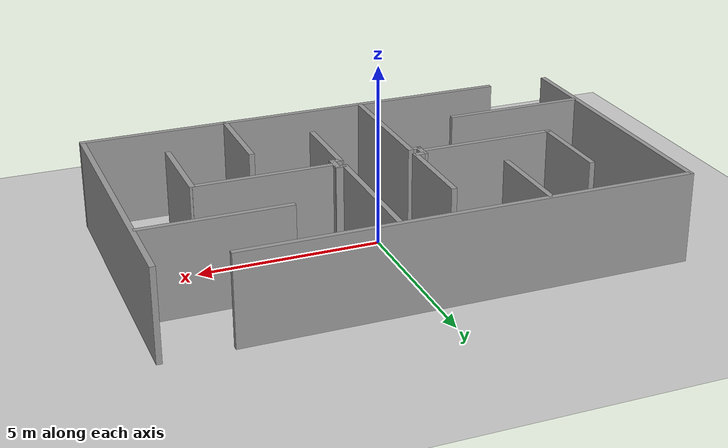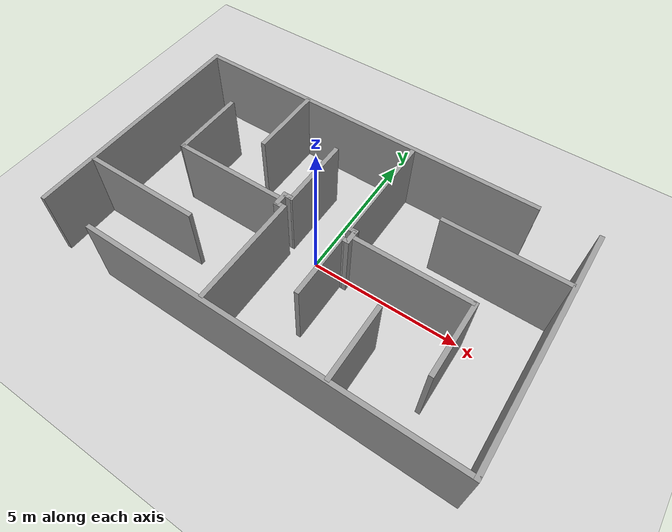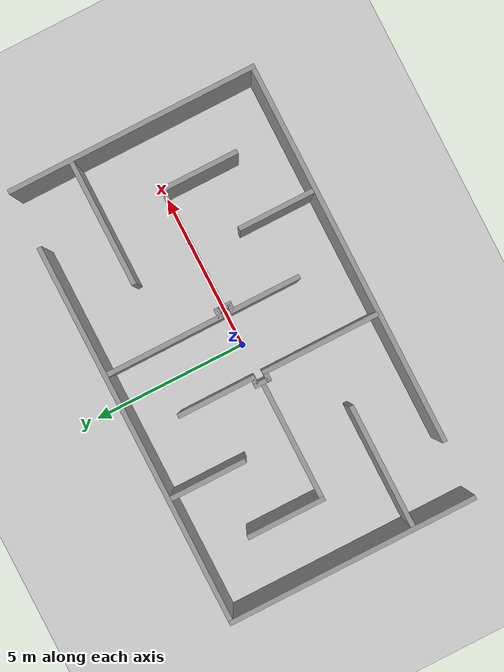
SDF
<sdf version="1.7">
 <world name="default">
  <light name="sun" type="directional">
   <pose>0 0 10 0 -0 0</pose>
   <diffuse>0.8 0.8 0.8 1</diffuse>
   <specular>0.2 0.2 0.2 1</specular>
   <attenuation>
    <range>1000</range>
    <constant>0.9</constant>
    <linear>0.01</linear>
    <quadratic>0.001</quadratic>
   </attenuation>
   <direction>-0.5 0.1 -0.9</direction>
   <spot><inner_angle>0</inner_angle><outer_angle>0</outer_angle><falloff>0</falloff></spot>
  </light>
  <model name="ground_plane">
   <static>1</static>
   <link name="link">
    <collision name="collision">
     <geometry><plane><normal>0 0 1</normal><size>100 100</size></plane></geometry>
     <surface>
      <contact><collide_bitmask>65535</collide_bitmask></contact>
      <friction><ode><mu>100</mu><mu2>50</mu2></ode></friction>
     </surface>
    </collision>
    <visual name="visual">
     <cast_shadows>0</cast_shadows>
     <geometry><plane><normal>0 0 1</normal><size>100 100</size></plane></geometry>
     <material>
      <script><uri>file://media/materials/scripts/gazebo.material</uri><name>Gazebo/Grey</name></script>
     </material>
    </visual>
   </link>
  </model>
  <gravity>0 0 -9.8</gravity>
  <magnetic_field>6e-06 2.3e-05 -4.2e-05</magnetic_field>
  <atmosphere type="adiabatic"/>
  <physics type="ode">
   <max_step_size>0.001</max_step_size>
   <real_time_factor>1</real_time_factor>
   <real_time_update_rate>1000</real_time_update_rate>
  </physics>
  <scene><ambient>0.4 0.4 0.4 1</ambient><background>0.7 0.7 0.7 1</background><shadows>1</shadows></scene>
  <spherical_coordinates>
   <surface_model>EARTH_WGS84</surface_model>
   <latitude_deg>0</latitude_deg>
   <longitude_deg>0</longitude_deg>
   <elevation>0</elevation>
   <heading_deg>0</heading_deg>
  </spherical_coordinates>
  <model name="gazebo_myroom_long">
   <pose>0.002788 0.005696 0 0 -0 0</pose>
   <link name="Wall_0">
    <collision name="Wall_0_Collision">
     <geometry><box><size>8 0.15 2.5</size></box></geometry>
     <pose>0 0 1.25 0 -0 0</pose>
    </collision>
    <visual name="Wall_0_Visual">
     <pose>0 0 1.25 0 -0 0</pose>
     <geometry><box><size>8 0.15 2.5</size></box></geometry>
     <material>
      <script><uri>file://media/materials/scripts/gazebo.material</uri><name>Gazebo/Grey</name></script>
      <ambient>1 1 1 1</ambient>
     </material>
     <meta><layer>0</layer></meta>
    </visual>
    <pose>-6.99603 0.007226 0 0 -0 1.5708</pose>
   </link>
   <link name="Wall_1">
    <collision name="Wall_1_Collision">
     <geometry><box><size>12.25 0.15 2.5</size></box></geometry>
     <pose>0 0 1.25 0 -0 0</pose>
    </collision>
    <visual name="Wall_1_Visual">
     <pose>0 0 1.25 0 -0 0</pose>
     <geometry><box><size>12.25 0.15 2.5</size></box></geometry>
     <material>
      <script><uri>file://media/materials/scripts/gazebo.material</uri><name>Gazebo/Grey</name></script>
      <ambient>1 1 1 1</ambient>
     </material>
     <meta><layer>0</layer></meta>
    </visual>
    <pose>-0.946025 3.93223 0 0 -0 0</pose>
   </link>
   <link name="Wall_11">
    <collision name="Wall_11_Collision">
     <geometry><box><size>3.75 0.15 2.5</size></box></geometry>
     <pose>0 0 1.25 0 -0 0</pose>
    </collision>
    <visual name="Wall_11_Visual">
     <pose>0 0 1.25 0 -0 0</pose>
     <geometry><box><size>3.75 0.15 2.5</size></box></geometry>
     <material>
      <script><uri>file://media/materials/scripts/gazebo.material</uri><name>Gazebo/Grey</name></script>
      <ambient>1 1 1 1</ambient>
     </material>
     <meta><layer>0</layer></meta>
    </visual>
    <pose>-0.996565 -2.02534 0 0 -0 -1.5708</pose>
   </link>
   <link name="Wall_13">
    <collision name="Wall_13_Collision">
     <geometry><box><size>0.3 0.15 2.5</size></box></geometry>
     <pose>0 0 1.25 0 -0 0</pose>
    </collision>
    <visual name="Wall_13_Visual">
     <pose>0 0 1.25 0 -0 0</pose>
     <geometry><box><size>0.3 0.15 2.5</size></box></geometry>
     <material>
      <script><uri>file://media/materials/scripts/gazebo.material</uri><name>Gazebo/Grey</name></script>
      <ambient>1 1 1 1</ambient>
     </material>
     <meta><layer>0</layer></meta>
    </visual>
    <pose>-1.16354 -0.225426 0 0 -0 0</pose>
   </link>
   <link name="Wall_15">
    <collision name="Wall_15_Collision">
     <geometry><box><size>0.5 0.15 2.5</size></box></geometry>
     <pose>0 0 1.25 0 -0 0</pose>
    </collision>
    <visual name="Wall_15_Visual">
     <pose>0 0 1.25 0 -0 0</pose>
     <geometry><box><size>0.5 0.15 2.5</size></box></geometry>
     <material>
      <script><uri>file://media/materials/scripts/gazebo.material</uri><name>Gazebo/Grey</name></script>
      <ambient>1 1 1 1</ambient>
     </material>
     <meta><layer>0</layer></meta>
    </visual>
    <pose>-1.23854 -0.007657 0 0 -0 -1.5708</pose>
   </link>
   <link name="Wall_17">
    <collision name="Wall_17_Collision">
     <geometry><box><size>0.25 0.15 2.5</size></box></geometry>
     <pose>0 0 1.25 0 -0 0</pose>
    </collision>
    <visual name="Wall_17_Visual">
     <pose>0 0 1.25 0 -0 0</pose>
     <geometry><box><size>0.25 0.15 2.5</size></box></geometry>
     <material>
      <script><uri>file://media/materials/scripts/gazebo.material</uri><name>Gazebo/Grey</name></script>
      <ambient>1 1 1 1</ambient>
     </material>
     <meta><layer>0</layer></meta>
    </visual>
    <pose>-1.10956 0.167343 0 0 -0 3.14159</pose>
   </link>
   <link name="Wall_20">
    <collision name="Wall_20_Collision">
     <geometry><box><size>2.5 0.15 2.5</size></box></geometry>
     <pose>0 0 1.25 0 -0 0</pose>
    </collision>
    <visual name="Wall_20_Visual">
     <pose>0 0 1.25 0 -0 0</pose>
     <geometry><box><size>2.5 0.15 2.5</size></box></geometry>
     <material>
      <script><uri>file://media/materials/scripts/gazebo.material</uri><name>Gazebo/Grey</name></script>
      <ambient>1 1 1 1</ambient>
     </material>
     <meta><layer>0</layer></meta>
    </visual>
    <pose>-0.99885 1.34274 0 0 -0 -1.5708</pose>
   </link>
   <link name="Wall_22">
    <collision name="Wall_22_Collision">
     <geometry><box><size>0.3 0.15 2.5</size></box></geometry>
     <pose>0 0 1.25 0 -0 0</pose>
    </collision>
    <visual name="Wall_22_Visual">
     <pose>0 0 1.25 0 -0 0</pose>
     <geometry><box><size>0.3 0.15 2.5</size></box></geometry>
     <material>
      <script><uri>file://media/materials/scripts/gazebo.material</uri><name>Gazebo/Grey</name></script>
      <ambient>1 1 1 1</ambient>
     </material>
     <meta><layer>0</layer></meta>
    </visual>
    <pose>1.13413 0.19705 0 0 -0 0</pose>
   </link>
   <link name="Wall_24">
    <collision name="Wall_24_Collision">
     <geometry><box><size>0.25 0.15 2.5</size></box></geometry>
     <pose>0 0 1.25 0 -0 0</pose>
    </collision>
    <visual name="Wall_24_Visual">
     <pose>0 0 1.25 0 -0 0</pose>
     <geometry><box><size>0.25 0.15 2.5</size></box></geometry>
     <material>
      <script><uri>file://media/materials/scripts/gazebo.material</uri><name>Gazebo/Grey</name></script>
      <ambient>1 1 1 1</ambient>
     </material>
     <meta><layer>0</layer></meta>
    </visual>
    <pose>1.08432 -0.204907 0 0 -0 0</pose>
   </link>
   <link name="Wall_26">
    <collision name="Wall_26_Collision">
     <geometry><box><size>0.5 0.15 2.5</size></box></geometry>
     <pose>0 0 1.25 0 -0 0</pose>
    </collision>
    <visual name="Wall_26_Visual">
     <pose>0 0 1.25 0 -0 0</pose>
     <geometry><box><size>0.5 0.15 2.5</size></box></geometry>
     <material>
      <script><uri>file://media/materials/scripts/gazebo.material</uri><name>Gazebo/Grey</name></script>
      <ambient>1 1 1 1</ambient>
     </material>
     <meta><layer>0</layer></meta>
    </visual>
    <pose>1.20922 -0.030106 0 0 -0 -1.5708</pose>
   </link>
   <link name="Wall_3">
    <collision name="Wall_3_Collision">
     <geometry><box><size>8 0.15 2.5</size></box></geometry>
     <pose>0 0 1.25 0 -0 0</pose>
    </collision>
    <visual name="Wall_3_Visual">
     <pose>0 0 1.25 0 -0 0</pose>
     <geometry><box><size>8 0.15 2.5</size></box></geometry>
     <material>
      <script><uri>file://media/materials/scripts/gazebo.material</uri><name>Gazebo/Grey</name></script>
      <ambient>1 1 1 1</ambient>
     </material>
     <meta><layer>0</layer></meta>
    </visual>
    <pose>6.99603 -0.007226 0 0 -0 -1.5708</pose>
   </link>
   <link name="Wall_30">
    <collision name="Wall_30_Collision">
     <geometry><box><size>2.25 0.15 2.5</size></box></geometry>
     <pose>0 0 1.25 0 -0 0</pose>
    </collision>
    <visual name="Wall_30_Visual">
     <pose>0 0 1.25 0 -0 0</pose>
     <geometry><box><size>2.25 0.15 2.5</size></box></geometry>
     <material>
      <script><uri>file://media/materials/scripts/gazebo.material</uri><name>Gazebo/Grey</name></script>
      <ambient>1 1 1 1</ambient>
     </material>
     <meta><layer>0</layer></meta>
    </visual>
    <pose>1.00098 -1.25491 0 0 -0 1.5708</pose>
   </link>
   <link name="Wall_32">
    <collision name="Wall_32_Collision">
     <geometry><box><size>3.75 0.15 2.5</size></box></geometry>
     <pose>0 0 1.25 0 -0 0</pose>
    </collision>
    <visual name="Wall_32_Visual">
     <pose>0 0 1.25 0 -0 0</pose>
     <geometry><box><size>3.75 0.15 2.5</size></box></geometry>
     <material>
      <script><uri>file://media/materials/scripts/gazebo.material</uri><name>Gazebo/Grey</name></script>
      <ambient>1 1 1 1</ambient>
     </material>
     <meta><layer>0</layer></meta>
    </visual>
    <pose>1.00366 1.99696 0 0 -0 1.5708</pose>
   </link>
   <link name="Wall_34">
    <collision name="Wall_34_Collision">
     <geometry><box><size>2.5 0.15 2.5</size></box></geometry>
     <pose>0 0 1.25 0 -0 0</pose>
    </collision>
    <visual name="Wall_34_Visual">
     <pose>0 0 1.25 0 -0 0</pose>
     <geometry><box><size>2.5 0.15 2.5</size></box></geometry>
     <material>
      <script><uri>file://media/materials/scripts/gazebo.material</uri><name>Gazebo/Grey</name></script>
      <ambient>1 1 1 1</ambient>
     </material>
     <meta><layer>0</layer></meta>
    </visual>
    <pose>-3.0206 2.686 0 0 -0 1.5708</pose>
   </link>
   <link name="Wall_36">
    <collision name="Wall_36_Collision">
     <geometry><box><size>2.5 0.15 2.5</size></box></geometry>
     <pose>0 0 1.25 0 -0 0</pose>
    </collision>
    <visual name="Wall_36_Visual">
     <pose>0 0 1.25 0 -0 0</pose>
     <geometry><box><size>2.5 0.15 2.5</size></box></geometry>
     <material>
      <script><uri>file://media/materials/scripts/gazebo.material</uri><name>Gazebo/Grey</name></script>
      <ambient>1 1 1 1</ambient>
     </material>
     <meta><layer>0</layer></meta>
    </visual>
    <pose>-5.02899 1.14962 0 0 -0 -1.5708</pose>
   </link>
   <link name="Wall_38">
    <collision name="Wall_38_Collision">
     <geometry><box><size>3.75 0.15 2.5</size></box></geometry>
     <pose>0 0 1.25 0 -0 0</pose>
    </collision>
    <visual name="Wall_38_Visual">
     <pose>0 0 1.25 0 -0 0</pose>
     <geometry><box><size>3.75 0.15 2.5</size></box></geometry>
     <material>
      <script><uri>file://media/materials/scripts/gazebo.material</uri><name>Gazebo/Grey</name></script>
      <ambient>1 1 1 1</ambient>
     </material>
     <meta><layer>0</layer></meta>
    </visual>
    <pose>-3.18385 -0.025602 0 0 -0 3.14159</pose>
   </link>
   <link name="Wall_4">
    <collision name="Wall_4_Collision">
     <geometry><box><size>12.25 0.15 2.5</size></box></geometry>
     <pose>0 0 1.25 0 -0 0</pose>
    </collision>
    <visual name="Wall_4_Visual">
     <pose>0 0 1.25 0 -0 0</pose>
     <geometry><box><size>12.25 0.15 2.5</size></box></geometry>
     <material>
      <script><uri>file://media/materials/scripts/gazebo.material</uri><name>Gazebo/Grey</name></script>
      <ambient>1 1 1 1</ambient>
     </material>
     <meta><layer>0</layer></meta>
    </visual>
    <pose>0.946025 -3.93223 0 0 -0 3.14159</pose>
   </link>
   <link name="Wall_40">
    <collision name="Wall_40_Collision">
     <geometry><box><size>2.5 0.15 2.5</size></box></geometry>
     <pose>0 0 1.25 0 -0 0</pose>
    </collision>
    <visual name="Wall_40_Visual">
     <pose>0 0 1.25 0 -0 0</pose>
     <geometry><box><size>2.5 0.15 2.5</size></box></geometry>
     <material>
      <script><uri>file://media/materials/scripts/gazebo.material</uri><name>Gazebo/Grey</name></script>
      <ambient>1 1 1 1</ambient>
     </material>
     <meta><layer>0</layer></meta>
    </visual>
    <pose>3.01502 -2.69665 0 0 -0 -1.5708</pose>
   </link>
   <link name="Wall_42">
    <collision name="Wall_42_Collision">
     <geometry><box><size>2.5 0.15 2.5</size></box></geometry>
     <pose>0 0 1.25 0 -0 0</pose>
    </collision>
    <visual name="Wall_42_Visual">
     <pose>0 0 1.25 0 -0 0</pose>
     <geometry><box><size>2.5 0.15 2.5</size></box></geometry>
     <material>
      <script><uri>file://media/materials/scripts/gazebo.material</uri><name>Gazebo/Grey</name></script>
      <ambient>1 1 1 1</ambient>
     </material>
     <meta><layer>0</layer></meta>
    </visual>
    <pose>5.03172 -1.18142 0 0 -0 -1.5708</pose>
   </link>
   <link name="Wall_44">
    <collision name="Wall_44_Collision">
     <geometry><box><size>3.75 0.15 2.5</size></box></geometry>
     <pose>0 0 1.25 0 -0 0</pose>
    </collision>
    <visual name="Wall_44_Visual">
     <pose>0 0 1.25 0 -0 0</pose>
     <geometry><box><size>3.75 0.15 2.5</size></box></geometry>
     <material>
      <script><uri>file://media/materials/scripts/gazebo.material</uri><name>Gazebo/Grey</name></script>
      <ambient>1 1 1 1</ambient>
     </material>
     <meta><layer>0</layer></meta>
    </visual>
    <pose>3.15922 -0.00231 0 0 -0 0</pose>
   </link>
   <link name="Wall_6">
    <collision name="Wall_6_Collision">
     <geometry><box><size>4 0.15 2.5</size></box></geometry>
     <pose>0 0 1.25 0 -0 0</pose>
    </collision>
    <visual name="Wall_6_Visual">
     <pose>0 0 1.25 0 -0 0</pose>
     <geometry><box><size>4 0.15 2.5</size></box></geometry>
     <material>
      <script><uri>file://media/materials/scripts/gazebo.material</uri><name>Gazebo/Grey</name></script>
      <ambient>1 1 1 1</ambient>
     </material>
     <meta><layer>0</layer></meta>
    </visual>
    <pose>-5.00983 -1.99409 0 0 -0 3.14159</pose>
   </link>
   <link name="Wall_8">
    <collision name="Wall_8_Collision">
     <geometry><box><size>4 0.15 2.5</size></box></geometry>
     <pose>0 0 1.25 0 -0 0</pose>
    </collision>
    <visual name="Wall_8_Visual">
     <pose>0 0 1.25 0 -0 0</pose>
     <geometry><box><size>4 0.15 2.5</size></box></geometry>
     <material>
      <script><uri>file://media/materials/scripts/gazebo.material</uri><name>Gazebo/Grey</name></script>
      <ambient>1 1 1 1</ambient>
     </material>
     <meta><layer>0</layer></meta>
    </visual>
    <pose>4.97334 1.97702 0 0 -0 0</pose>
   </link>
   <static>1</static>
  </model>
 </world>
</sdf>
